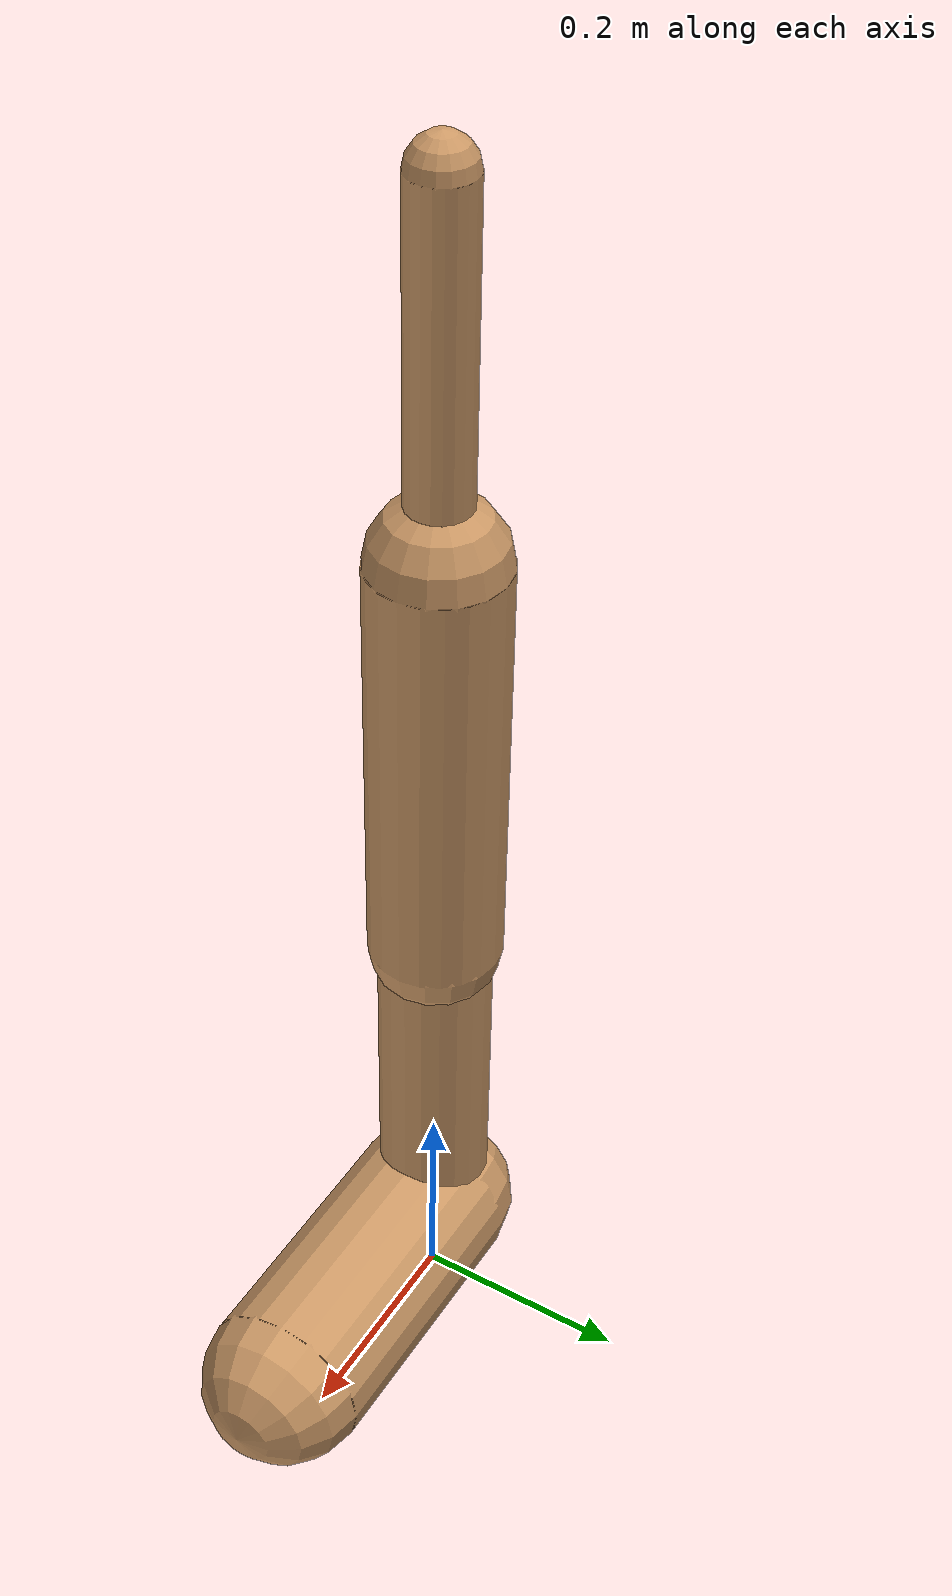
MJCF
<mujoco model="walker2d">
    <compiler angle="degree" coordinate="global" inertiafromgeom="true" />
    <default>
        <joint armature="0.01" damping=".1" limited="true" />
        <geom conaffinity="0" condim="3" contype="1" density="1000" friction="0.8 .1 .1" rgba="0.8 0.6 .4 1" />
    </default>
    <option integrator="RK4" timestep="0.002" />
    <worldbody>
        <!-- CHANGES: see hopper.xml -->
        <body name="torso">
            <joint armature="0" axis="1 0 0" damping="0" limited="false" name="ignorex" pos="0 0 0" stiffness="0" type="slide" />
            <joint armature="0" axis="0 0 1" damping="0" limited="false" name="ignorez" pos="0 0 0" ref="1.25" stiffness="0" type="slide" />
            <joint armature="0" axis="0 1 0" damping="0" limited="false" name="ignorey" pos="0 0 0" stiffness="0" type="hinge" />
            <geom fromto="0 0 1.1499 0 0 0.8365" name="torso_geom" size="0.0278" type="capsule" />
            <body name="thigh">
                <joint axis="0 -1 0" name="thigh_joint" pos="0 0 0.8365" range="-150 0" type="hinge" />
                <geom fromto="0 0 0.8365 0 0 0.4405" name="thigh_geom" size="0.0598" type="capsule" />
                <body name="leg">
                    <joint axis="0 -1 0" name="leg_joint" pos="0 0 0.4405" range="-150 0" type="hinge" />
                    <geom fromto="0 0 0.4405 0 0 0.1" name="leg_geom" size="0.0511" type="capsule" />
                    <body name="foot">
                        <joint axis="0 -1 0" name="foot_joint" pos="0 0 0.1" range="-45 45" type="hinge" />
                        <geom fromto="-0.0 0 0.1 0.2577 0 0.1" name="foot_geom" size="0.0766" type="capsule" />
                    </body>
                </body>
            </body>
            <!-- copied and then replace thigh->thigh_left, leg->leg_left, foot->foot_right -->
            <body name="thigh_left">
                <joint axis="0 -1 0" name="thigh_left_joint" pos="0 0 0.8365" range="-150 0" type="hinge" />
                <geom fromto="0 0 0.8365 0 0 0.4405" name="thigh_left_geom" rgba=".7 .3 .6 1" size="0.0598" type="capsule" />
                <body name="leg_left">
                    <joint axis="0 -1 0" name="leg_left_joint" pos="0 0 0.4405" range="-150 0" type="hinge" />
                    <geom fromto="0 0 0.4405 0 0 0.1" name="leg_left_geom" rgba=".7 .3 .6 1" size="0.0511" type="capsule" />
                    <body name="foot_left">
                        <joint axis="0 -1 0" name="foot_left_joint" pos="0 0 0.1" range="-45 45" type="hinge" />
                        <geom fromto="-0.0 0 0.1 0.2577 0 0.1" name="foot_left_geom" rgba=".7 .3 .6 1" size="0.0766" type="capsule" />
                    </body>
                </body>
            </body>
        </body>
    </worldbody>
    <actuator>
        <motor ctrllimited="true" ctrlrange="-1.0 1.0" gear="100" joint="thigh_joint" />
        <motor ctrllimited="true" ctrlrange="-1.0 1.0" gear="100" joint="leg_joint" />
        <motor ctrllimited="true" ctrlrange="-1.0 1.0" gear="100" joint="foot_joint" />
        <motor ctrllimited="true" ctrlrange="-1.0 1.0" gear="100" joint="thigh_left_joint" />
        <motor ctrllimited="true" ctrlrange="-1.0 1.0" gear="100" joint="leg_left_joint" />
        <motor ctrllimited="true" ctrlrange="-1.0 1.0" gear="100" joint="foot_left_joint" />
    </actuator>
</mujoco>
